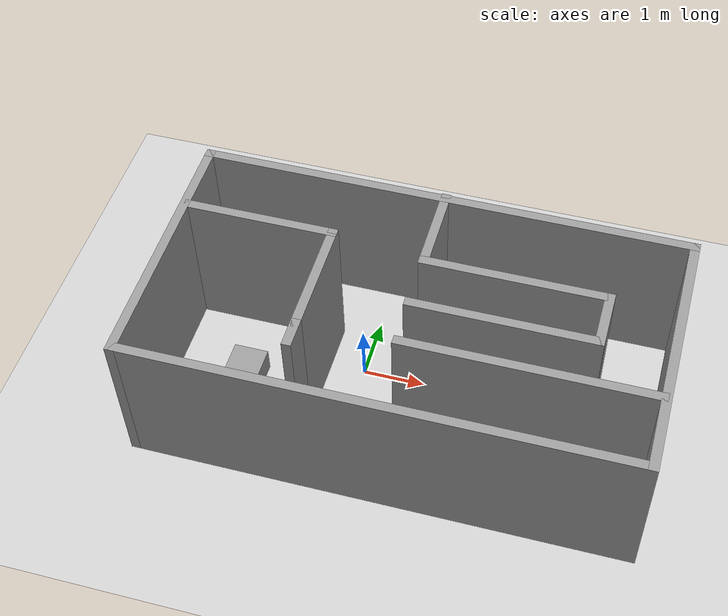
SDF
<sdf version="1.7">
 <world name="default">
  <light name="sun" type="directional">
   <pose>0 0 10 0 -0 0</pose>
   <diffuse>0.8 0.8 0.8 1</diffuse>
   <specular>0.2 0.2 0.2 1</specular>
   <attenuation>
    <range>1000</range>
    <constant>0.9</constant>
    <linear>0.01</linear>
    <quadratic>0.001</quadratic>
   </attenuation>
   <direction>-0.5 0.1 -0.9</direction>
   <spot><inner_angle>0</inner_angle><outer_angle>0</outer_angle><falloff>0</falloff></spot>
  </light>
  <model name="ground_plane">
   <static>1</static>
   <link name="link">
    <collision name="collision">
     <geometry><plane><normal>0 0 1</normal><size>100 100</size></plane></geometry>
     <surface>
      <contact><collide_bitmask>65535</collide_bitmask></contact>
      <friction><ode><mu>100</mu><mu2>50</mu2></ode></friction>
     </surface>
    </collision>
    <visual name="visual">
     <cast_shadows>0</cast_shadows>
     <geometry><plane><normal>0 0 1</normal><size>100 100</size></plane></geometry>
     <material>
      <script><uri>file://media/materials/scripts/gazebo.material</uri><name>Gazebo/Grey</name></script>
     </material>
    </visual>
   </link>
  </model>
  <gravity>0 0 -9.8</gravity>
  <magnetic_field>6e-06 2.3e-05 -4.2e-05</magnetic_field>
  <atmosphere type="adiabatic"/>
  <physics type="ode">
   <max_step_size>0.001</max_step_size>
   <real_time_factor>1</real_time_factor>
   <real_time_update_rate>1000</real_time_update_rate>
  </physics>
  <scene><ambient>0.4 0.4 0.4 1</ambient><background>0.7 0.7 0.7 1</background><shadows>1</shadows></scene>
  <audio><device>default</device></audio>
  <spherical_coordinates>
   <surface_model>EARTH_WGS84</surface_model>
   <latitude_deg>0</latitude_deg>
   <longitude_deg>0</longitude_deg>
   <elevation>0</elevation>
   <heading_deg>0</heading_deg>
  </spherical_coordinates>
  <model name="room">
   <pose>0.864117 0.417967 0 0 -0 0</pose>
   <link name="Wall_1">
    <collision name="Wall_1_Collision">
     <geometry><box><size>8 0.15 2.5</size></box></geometry>
     <pose>0 0 1.25 0 -0 0</pose>
    </collision>
    <visual name="Wall_1_Visual">
     <pose>0 0 1.25 0 -0 0</pose>
     <geometry><box><size>8 0.15 2.5</size></box></geometry>
     <material>
      <script><uri>file://media/materials/scripts/gazebo.material</uri><name>Gazebo/Grey</name></script>
      <ambient>1 1 1 1</ambient>
     </material>
     <meta><layer>0</layer></meta>
    </visual>
    <pose>-0 1.3875 0 0 -0 0</pose>
   </link>
   <link name="Wall_11">
    <collision name="Wall_11_Collision">
     <geometry><box><size>4 0.15 2.5</size></box></geometry>
     <pose>0 0 1.25 0 -0 0</pose>
    </collision>
    <visual name="Wall_11_Visual">
     <pose>0 0 1.25 0 -0 0</pose>
     <geometry><box><size>4 0.15 2.5</size></box></geometry>
     <material>
      <script><uri>file://media/materials/scripts/gazebo.material</uri><name>Gazebo/Grey</name></script>
      <ambient>1 1 1 1</ambient>
     </material>
     <meta><layer>0</layer></meta>
    </visual>
    <pose>1.95 -1.5325 0 0 -0 0</pose>
   </link>
   <link name="Wall_13">
    <collision name="Wall_13_Collision">
     <geometry><box><size>2.5 0.15 2.5</size></box></geometry>
     <pose>0 0 1.25 0 -0 0</pose>
    </collision>
    <visual name="Wall_13_Visual">
     <pose>0 0 1.25 0 -0 0</pose>
     <geometry><box><size>2.5 0.15 2.5</size></box></geometry>
     <material>
      <script><uri>file://media/materials/scripts/gazebo.material</uri><name>Gazebo/Grey</name></script>
      <ambient>1 1 1 1</ambient>
     </material>
     <meta><layer>0</layer></meta>
    </visual>
    <pose>-2.68 0.2375 0 0 -0 0</pose>
   </link>
   <link name="Wall_14">
    <collision name="Wall_14_Collision">
     <geometry><box><size>2 0.15 2.5</size></box></geometry>
     <pose>0 0 1.25 0 -0 0</pose>
    </collision>
    <visual name="Wall_14_Visual">
     <pose>0 0 1.25 0 -0 0</pose>
     <geometry><box><size>2 0.15 2.5</size></box></geometry>
     <material>
      <script><uri>file://media/materials/scripts/gazebo.material</uri><name>Gazebo/Grey</name></script>
      <ambient>1 1 1 1</ambient>
     </material>
     <meta><layer>0</layer></meta>
    </visual>
    <pose>-1.505 -0.6875 0 0 -0 -1.5708</pose>
   </link>
   <link name="Wall_15">
    <collision name="Wall_15_Collision">
     <geometry><box><size>0.5 0.15 2.5</size></box></geometry>
     <pose>0 0 1.25 0 -0 0</pose>
    </collision>
    <visual name="Wall_15_Visual">
     <pose>0 0 1.25 0 -0 0</pose>
     <geometry><box><size>0.5 0.15 2.5</size></box></geometry>
     <material>
      <script><uri>file://media/materials/scripts/gazebo.material</uri><name>Gazebo/Grey</name></script>
      <ambient>1 1 1 1</ambient>
     </material>
     <meta><layer>0</layer></meta>
    </visual>
    <pose>-1.505 -1.7875 0 0 -0 -1.5708</pose>
   </link>
   <link name="Wall_2">
    <collision name="Wall_2_Collision">
     <geometry><box><size>4.25 0.15 2.5</size></box></geometry>
     <pose>0 0 1.25 0 -0 0</pose>
    </collision>
    <visual name="Wall_2_Visual">
     <pose>0 0 1.25 0 -0 0</pose>
     <geometry><box><size>4.25 0.15 2.5</size></box></geometry>
     <material>
      <script><uri>file://media/materials/scripts/gazebo.material</uri><name>Gazebo/Grey</name></script>
      <ambient>1 1 1 1</ambient>
     </material>
     <meta><layer>0</layer></meta>
    </visual>
    <pose>3.925 -0.6625 0 0 -0 -1.5708</pose>
   </link>
   <link name="Wall_3">
    <collision name="Wall_3_Collision">
     <geometry><box><size>8 0.15 2.5</size></box></geometry>
     <pose>0 0 1.25 0 -0 0</pose>
    </collision>
    <visual name="Wall_3_Visual">
     <pose>0 0 1.25 0 -0 0</pose>
     <geometry><box><size>8 0.15 2.5</size></box></geometry>
     <material>
      <script><uri>file://media/materials/scripts/gazebo.material</uri><name>Gazebo/Grey</name></script>
      <ambient>1 1 1 1</ambient>
     </material>
     <meta><layer>0</layer></meta>
    </visual>
    <pose>-0 -2.7125 0 0 -0 3.14159</pose>
   </link>
   <link name="Wall_4">
    <collision name="Wall_4_Collision">
     <geometry><box><size>4.25 0.15 2.5</size></box></geometry>
     <pose>0 0 1.25 0 -0 0</pose>
    </collision>
    <visual name="Wall_4_Visual">
     <pose>0 0 1.25 0 -0 0</pose>
     <geometry><box><size>4.25 0.15 2.5</size></box></geometry>
     <material>
      <script><uri>file://media/materials/scripts/gazebo.material</uri><name>Gazebo/Grey</name></script>
      <ambient>1 1 1 1</ambient>
     </material>
     <meta><layer>0</layer></meta>
    </visual>
    <pose>-3.925 -0.6625 0 0 -0 1.5708</pose>
   </link>
   <link name="Wall_6">
    <collision name="Wall_6_Collision">
     <geometry><box><size>1.5 0.15 2.5</size></box></geometry>
     <pose>0 0 1.25 0 -0 0</pose>
    </collision>
    <visual name="Wall_6_Visual">
     <pose>0 0 1.25 0 -0 0</pose>
     <geometry><box><size>1.5 0.15 2.5</size></box></geometry>
     <material>
      <script><uri>file://media/materials/scripts/gazebo.material</uri><name>Gazebo/Grey</name></script>
      <ambient>1 1 1 1</ambient>
     </material>
     <meta><layer>0</layer></meta>
    </visual>
    <pose>-0.005 0.7325 0 0 -0 -1.5708</pose>
   </link>
   <link name="Wall_7">
    <collision name="Wall_7_Collision">
     <geometry><box><size>3 0.15 2.5</size></box></geometry>
     <pose>0 0 1.25 0 -0 0</pose>
    </collision>
    <visual name="Wall_7_Visual">
     <pose>0 0 1.25 0 -0 0</pose>
     <geometry><box><size>3 0.15 2.5</size></box></geometry>
     <material>
      <script><uri>file://media/materials/scripts/gazebo.material</uri><name>Gazebo/Grey</name></script>
      <ambient>1 1 1 1</ambient>
     </material>
     <meta><layer>0</layer></meta>
    </visual>
    <pose>1.42 0.0575 0 0 -0 0</pose>
   </link>
   <link name="Wall_8">
    <collision name="Wall_8_Collision">
     <geometry><box><size>1 0.15 2.5</size></box></geometry>
     <pose>0 0 1.25 0 -0 0</pose>
    </collision>
    <visual name="Wall_8_Visual">
     <pose>0 0 1.25 0 -0 0</pose>
     <geometry><box><size>1 0.15 2.5</size></box></geometry>
     <material>
      <script><uri>file://media/materials/scripts/gazebo.material</uri><name>Gazebo/Grey</name></script>
      <ambient>1 1 1 1</ambient>
     </material>
     <meta><layer>0</layer></meta>
    </visual>
    <pose>2.845 -0.3675 0 0 -0 -1.5708</pose>
   </link>
   <link name="Wall_9">
    <collision name="Wall_9_Collision">
     <geometry><box><size>3 0.15 2.5</size></box></geometry>
     <pose>0 0 1.25 0 -0 0</pose>
    </collision>
    <visual name="Wall_9_Visual">
     <pose>0 0 1.25 0 -0 0</pose>
     <geometry><box><size>3 0.15 2.5</size></box></geometry>
     <material>
      <script><uri>file://media/materials/scripts/gazebo.material</uri><name>Gazebo/Grey</name></script>
      <ambient>1 1 1 1</ambient>
     </material>
     <meta><layer>0</layer></meta>
    </visual>
    <pose>1.42 -0.7925 0 0 -0 3.14159</pose>
   </link>
   <static>1</static>
  </model>
  <model name="unit_box">
   <pose>-1.82109 -0.598389 0.206933 0 -0 0</pose>
   <link name="link">
    <inertial>
     <mass>1</mass>
     <inertia>
      <ixx>0.166667</ixx>
      <ixy>0</ixy>
      <ixz>0</ixz>
      <iyy>0.166667</iyy>
      <iyz>0</iyz>
      <izz>0.166667</izz>
     </inertia>
    </inertial>
    <collision name="collision">
     <geometry><box><size>0.564602 0.574008 0.413867</size></box></geometry>
    </collision>
    <visual name="visual">
     <geometry><box><size>0.564602 0.574008 0.413867</size></box></geometry>
     <material>
      <script><name>Gazebo/Grey</name><uri>file://media/materials/scripts/gazebo.material</uri></script>
     </material>
    </visual>
   </link>
  </model>
 </world>
</sdf>
